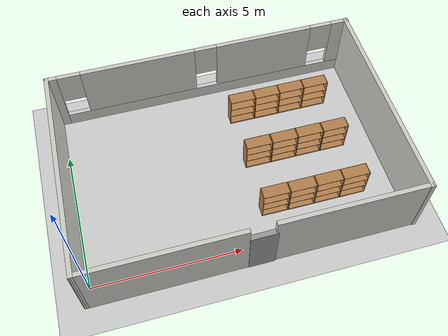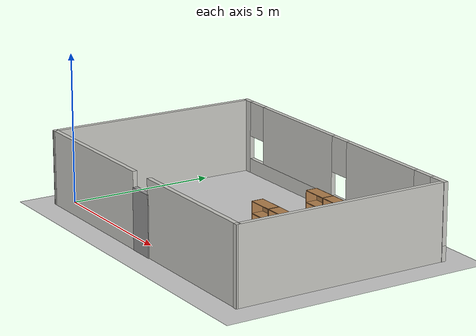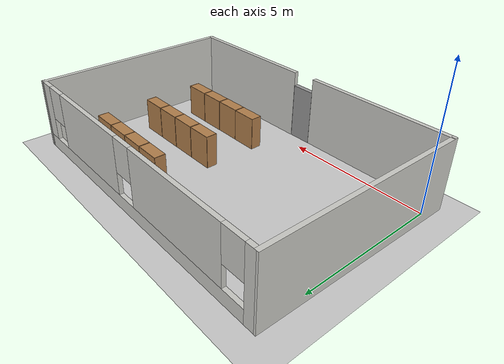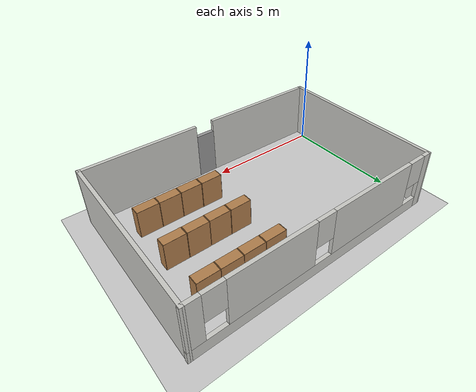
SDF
<sdf version="1.7">
 <world name="default">
  <model name="ground_plane">
   <static>1</static>
   <link name="link">
    <collision name="collision">
     <geometry><plane><normal>0 0 1</normal><size>100 100</size></plane></geometry>
     <surface>
      <contact><collide_bitmask>65535</collide_bitmask></contact>
      <friction><ode><mu>100</mu><mu2>50</mu2></ode></friction>
     </surface>
    </collision>
    <visual name="visual">
     <cast_shadows>0</cast_shadows>
     <geometry><plane><normal>0 0 1</normal><size>100 100</size></plane></geometry>
     <material>
      <script><uri>file://media/materials/scripts/gazebo.material</uri><name>Gazebo/Grey</name></script>
     </material>
    </visual>
   </link>
  </model>
  <model name="bookshelf_11">
   <static>1</static>
   <link name="link">
    <inertial><mass>1</mass></inertial>
    <collision name="back">
     <pose>0 0.005 0.6 0 -0 0</pose>
     <geometry><box><size>0.9 0.01 1.2</size></box></geometry>
    </collision>
    <visual name="visual1">
     <pose>0 0.005 0.6 0 -0 0</pose>
     <geometry><box><size>0.9 0.01 1.2</size></box></geometry>
     <material>
      <script><uri>file://media/materials/scripts/gazebo.material</uri><name>Gazebo/Wood</name></script>
     </material>
    </visual>
    <collision name="left_side">
     <pose>0.45 -0.195 0.6 0 -0 0</pose>
     <geometry><box><size>0.02 0.4 1.2</size></box></geometry>
    </collision>
    <visual name="visual2">
     <pose>0.45 -0.195 0.6 0 -0 0</pose>
     <geometry><box><size>0.02 0.4 1.2</size></box></geometry>
     <material>
      <script><uri>file://media/materials/scripts/gazebo.material</uri><name>Gazebo/Wood</name></script>
     </material>
    </visual>
    <collision name="right_side">
     <pose>-0.45 -0.195 0.6 0 -0 0</pose>
     <geometry><box><size>0.02 0.4 1.2</size></box></geometry>
    </collision>
    <visual name="visual3">
     <pose>-0.45 -0.195 0.6 0 -0 0</pose>
     <geometry><box><size>0.02 0.4 1.2</size></box></geometry>
     <material>
      <script><uri>file://media/materials/scripts/gazebo.material</uri><name>Gazebo/Wood</name></script>
     </material>
    </visual>
    <collision name="bottom">
     <pose>0 -0.195 0.03 0 -0 0</pose>
     <geometry><box><size>0.88 0.4 0.06</size></box></geometry>
    </collision>
    <visual name="visual4">
     <pose>0 -0.195 0.03 0 -0 0</pose>
     <geometry><box><size>0.88 0.4 0.06</size></box></geometry>
     <material>
      <script><uri>file://media/materials/scripts/gazebo.material</uri><name>Gazebo/Wood</name></script>
     </material>
    </visual>
    <collision name="top">
     <pose>0 -0.195 1.19 0 -0 0</pose>
     <geometry><box><size>0.88 0.4 0.02</size></box></geometry>
    </collision>
    <visual name="visual5">
     <pose>0 -0.195 1.19 0 -0 0</pose>
     <geometry><box><size>0.88 0.4 0.02</size></box></geometry>
     <material>
      <script><uri>file://media/materials/scripts/gazebo.material</uri><name>Gazebo/Wood</name></script>
     </material>
    </visual>
    <collision name="low_shelf">
     <pose>0 -0.195 0.43 0 -0 0</pose>
     <geometry><box><size>0.88 0.4 0.02</size></box></geometry>
    </collision>
    <visual name="visual6">
     <pose>0 -0.195 0.43 0 -0 0</pose>
     <geometry><box><size>0.88 0.4 0.02</size></box></geometry>
     <material>
      <script><uri>file://media/materials/scripts/gazebo.material</uri><name>Gazebo/Wood</name></script>
     </material>
    </visual>
    <collision name="high_shelf">
     <pose>0 -0.195 0.8 0 -0 0</pose>
     <geometry><box><size>0.88 0.4 0.02</size></box></geometry>
    </collision>
    <visual name="visual7">
     <pose>0 -0.195 0.8 0 -0 0</pose>
     <geometry><box><size>0.88 0.4 0.02</size></box></geometry>
     <material>
      <script><uri>file://media/materials/scripts/gazebo.material</uri><name>Gazebo/Wood</name></script>
     </material>
    </visual>
   </link>
   <pose>6.45841 5.41018 0 0 -0 0</pose>
  </model>
  <model name="bookshelf_12">
   <static>1</static>
   <link name="link">
    <inertial><mass>1</mass></inertial>
    <collision name="back">
     <pose>0 0.005 0.6 0 -0 0</pose>
     <geometry><box><size>0.9 0.01 1.2</size></box></geometry>
    </collision>
    <visual name="visual1">
     <pose>0 0.005 0.6 0 -0 0</pose>
     <geometry><box><size>0.9 0.01 1.2</size></box></geometry>
     <material>
      <script><uri>file://media/materials/scripts/gazebo.material</uri><name>Gazebo/Wood</name></script>
     </material>
    </visual>
    <collision name="left_side">
     <pose>0.45 -0.195 0.6 0 -0 0</pose>
     <geometry><box><size>0.02 0.4 1.2</size></box></geometry>
    </collision>
    <visual name="visual2">
     <pose>0.45 -0.195 0.6 0 -0 0</pose>
     <geometry><box><size>0.02 0.4 1.2</size></box></geometry>
     <material>
      <script><uri>file://media/materials/scripts/gazebo.material</uri><name>Gazebo/Wood</name></script>
     </material>
    </visual>
    <collision name="right_side">
     <pose>-0.45 -0.195 0.6 0 -0 0</pose>
     <geometry><box><size>0.02 0.4 1.2</size></box></geometry>
    </collision>
    <visual name="visual3">
     <pose>-0.45 -0.195 0.6 0 -0 0</pose>
     <geometry><box><size>0.02 0.4 1.2</size></box></geometry>
     <material>
      <script><uri>file://media/materials/scripts/gazebo.material</uri><name>Gazebo/Wood</name></script>
     </material>
    </visual>
    <collision name="bottom">
     <pose>0 -0.195 0.03 0 -0 0</pose>
     <geometry><box><size>0.88 0.4 0.06</size></box></geometry>
    </collision>
    <visual name="visual4">
     <pose>0 -0.195 0.03 0 -0 0</pose>
     <geometry><box><size>0.88 0.4 0.06</size></box></geometry>
     <material>
      <script><uri>file://media/materials/scripts/gazebo.material</uri><name>Gazebo/Wood</name></script>
     </material>
    </visual>
    <collision name="top">
     <pose>0 -0.195 1.19 0 -0 0</pose>
     <geometry><box><size>0.88 0.4 0.02</size></box></geometry>
    </collision>
    <visual name="visual5">
     <pose>0 -0.195 1.19 0 -0 0</pose>
     <geometry><box><size>0.88 0.4 0.02</size></box></geometry>
     <material>
      <script><uri>file://media/materials/scripts/gazebo.material</uri><name>Gazebo/Wood</name></script>
     </material>
    </visual>
    <collision name="low_shelf">
     <pose>0 -0.195 0.43 0 -0 0</pose>
     <geometry><box><size>0.88 0.4 0.02</size></box></geometry>
    </collision>
    <visual name="visual6">
     <pose>0 -0.195 0.43 0 -0 0</pose>
     <geometry><box><size>0.88 0.4 0.02</size></box></geometry>
     <material>
      <script><uri>file://media/materials/scripts/gazebo.material</uri><name>Gazebo/Wood</name></script>
     </material>
    </visual>
    <collision name="high_shelf">
     <pose>0 -0.195 0.8 0 -0 0</pose>
     <geometry><box><size>0.88 0.4 0.02</size></box></geometry>
    </collision>
    <visual name="visual7">
     <pose>0 -0.195 0.8 0 -0 0</pose>
     <geometry><box><size>0.88 0.4 0.02</size></box></geometry>
     <material>
      <script><uri>file://media/materials/scripts/gazebo.material</uri><name>Gazebo/Wood</name></script>
     </material>
    </visual>
   </link>
   <pose>6.46154 3.39615 0 0 -0 0</pose>
  </model>
  <model name="bookshelf_13">
   <static>1</static>
   <link name="link">
    <inertial><mass>1</mass></inertial>
    <collision name="back">
     <pose>0 0.005 0.6 0 -0 0</pose>
     <geometry><box><size>0.9 0.01 1.2</size></box></geometry>
    </collision>
    <visual name="visual1">
     <pose>0 0.005 0.6 0 -0 0</pose>
     <geometry><box><size>0.9 0.01 1.2</size></box></geometry>
     <material>
      <script><uri>file://media/materials/scripts/gazebo.material</uri><name>Gazebo/Wood</name></script>
     </material>
    </visual>
    <collision name="left_side">
     <pose>0.45 -0.195 0.6 0 -0 0</pose>
     <geometry><box><size>0.02 0.4 1.2</size></box></geometry>
    </collision>
    <visual name="visual2">
     <pose>0.45 -0.195 0.6 0 -0 0</pose>
     <geometry><box><size>0.02 0.4 1.2</size></box></geometry>
     <material>
      <script><uri>file://media/materials/scripts/gazebo.material</uri><name>Gazebo/Wood</name></script>
     </material>
    </visual>
    <collision name="right_side">
     <pose>-0.45 -0.195 0.6 0 -0 0</pose>
     <geometry><box><size>0.02 0.4 1.2</size></box></geometry>
    </collision>
    <visual name="visual3">
     <pose>-0.45 -0.195 0.6 0 -0 0</pose>
     <geometry><box><size>0.02 0.4 1.2</size></box></geometry>
     <material>
      <script><uri>file://media/materials/scripts/gazebo.material</uri><name>Gazebo/Wood</name></script>
     </material>
    </visual>
    <collision name="bottom">
     <pose>0 -0.195 0.03 0 -0 0</pose>
     <geometry><box><size>0.88 0.4 0.06</size></box></geometry>
    </collision>
    <visual name="visual4">
     <pose>0 -0.195 0.03 0 -0 0</pose>
     <geometry><box><size>0.88 0.4 0.06</size></box></geometry>
     <material>
      <script><uri>file://media/materials/scripts/gazebo.material</uri><name>Gazebo/Wood</name></script>
     </material>
    </visual>
    <collision name="top">
     <pose>0 -0.195 1.19 0 -0 0</pose>
     <geometry><box><size>0.88 0.4 0.02</size></box></geometry>
    </collision>
    <visual name="visual5">
     <pose>0 -0.195 1.19 0 -0 0</pose>
     <geometry><box><size>0.88 0.4 0.02</size></box></geometry>
     <material>
      <script><uri>file://media/materials/scripts/gazebo.material</uri><name>Gazebo/Wood</name></script>
     </material>
    </visual>
    <collision name="low_shelf">
     <pose>0 -0.195 0.43 0 -0 0</pose>
     <geometry><box><size>0.88 0.4 0.02</size></box></geometry>
    </collision>
    <visual name="visual6">
     <pose>0 -0.195 0.43 0 -0 0</pose>
     <geometry><box><size>0.88 0.4 0.02</size></box></geometry>
     <material>
      <script><uri>file://media/materials/scripts/gazebo.material</uri><name>Gazebo/Wood</name></script>
     </material>
    </visual>
    <collision name="high_shelf">
     <pose>0 -0.195 0.8 0 -0 0</pose>
     <geometry><box><size>0.88 0.4 0.02</size></box></geometry>
    </collision>
    <visual name="visual7">
     <pose>0 -0.195 0.8 0 -0 0</pose>
     <geometry><box><size>0.88 0.4 0.02</size></box></geometry>
     <material>
      <script><uri>file://media/materials/scripts/gazebo.material</uri><name>Gazebo/Wood</name></script>
     </material>
    </visual>
   </link>
   <pose>6.44421 1.41365 0 0 -0 0</pose>
  </model>
  <model name="bookshelf_14">
   <static>1</static>
   <link name="link">
    <inertial><mass>1</mass></inertial>
    <collision name="back">
     <pose>0 0.005 0.6 0 -0 0</pose>
     <geometry><box><size>0.9 0.01 1.2</size></box></geometry>
    </collision>
    <visual name="visual1">
     <pose>0 0.005 0.6 0 -0 0</pose>
     <geometry><box><size>0.9 0.01 1.2</size></box></geometry>
     <material>
      <script><uri>file://media/materials/scripts/gazebo.material</uri><name>Gazebo/Wood</name></script>
     </material>
    </visual>
    <collision name="left_side">
     <pose>0.45 -0.195 0.6 0 -0 0</pose>
     <geometry><box><size>0.02 0.4 1.2</size></box></geometry>
    </collision>
    <visual name="visual2">
     <pose>0.45 -0.195 0.6 0 -0 0</pose>
     <geometry><box><size>0.02 0.4 1.2</size></box></geometry>
     <material>
      <script><uri>file://media/materials/scripts/gazebo.material</uri><name>Gazebo/Wood</name></script>
     </material>
    </visual>
    <collision name="right_side">
     <pose>-0.45 -0.195 0.6 0 -0 0</pose>
     <geometry><box><size>0.02 0.4 1.2</size></box></geometry>
    </collision>
    <visual name="visual3">
     <pose>-0.45 -0.195 0.6 0 -0 0</pose>
     <geometry><box><size>0.02 0.4 1.2</size></box></geometry>
     <material>
      <script><uri>file://media/materials/scripts/gazebo.material</uri><name>Gazebo/Wood</name></script>
     </material>
    </visual>
    <collision name="bottom">
     <pose>0 -0.195 0.03 0 -0 0</pose>
     <geometry><box><size>0.88 0.4 0.06</size></box></geometry>
    </collision>
    <visual name="visual4">
     <pose>0 -0.195 0.03 0 -0 0</pose>
     <geometry><box><size>0.88 0.4 0.06</size></box></geometry>
     <material>
      <script><uri>file://media/materials/scripts/gazebo.material</uri><name>Gazebo/Wood</name></script>
     </material>
    </visual>
    <collision name="top">
     <pose>0 -0.195 1.19 0 -0 0</pose>
     <geometry><box><size>0.88 0.4 0.02</size></box></geometry>
    </collision>
    <visual name="visual5">
     <pose>0 -0.195 1.19 0 -0 0</pose>
     <geometry><box><size>0.88 0.4 0.02</size></box></geometry>
     <material>
      <script><uri>file://media/materials/scripts/gazebo.material</uri><name>Gazebo/Wood</name></script>
     </material>
    </visual>
    <collision name="low_shelf">
     <pose>0 -0.195 0.43 0 -0 0</pose>
     <geometry><box><size>0.88 0.4 0.02</size></box></geometry>
    </collision>
    <visual name="visual6">
     <pose>0 -0.195 0.43 0 -0 0</pose>
     <geometry><box><size>0.88 0.4 0.02</size></box></geometry>
     <material>
      <script><uri>file://media/materials/scripts/gazebo.material</uri><name>Gazebo/Wood</name></script>
     </material>
    </visual>
    <collision name="high_shelf">
     <pose>0 -0.195 0.8 0 -0 0</pose>
     <geometry><box><size>0.88 0.4 0.02</size></box></geometry>
    </collision>
    <visual name="visual7">
     <pose>0 -0.195 0.8 0 -0 0</pose>
     <geometry><box><size>0.88 0.4 0.02</size></box></geometry>
     <material>
      <script><uri>file://media/materials/scripts/gazebo.material</uri><name>Gazebo/Wood</name></script>
     </material>
    </visual>
   </link>
   <pose>7.38076 5.40908 0 0 -0 0</pose>
  </model>
  <model name="bookshelf_15">
   <static>1</static>
   <link name="link">
    <inertial><mass>1</mass></inertial>
    <collision name="back">
     <pose>0 0.005 0.6 0 -0 0</pose>
     <geometry><box><size>0.9 0.01 1.2</size></box></geometry>
    </collision>
    <visual name="visual1">
     <pose>0 0.005 0.6 0 -0 0</pose>
     <geometry><box><size>0.9 0.01 1.2</size></box></geometry>
     <material>
      <script><uri>file://media/materials/scripts/gazebo.material</uri><name>Gazebo/Wood</name></script>
     </material>
    </visual>
    <collision name="left_side">
     <pose>0.45 -0.195 0.6 0 -0 0</pose>
     <geometry><box><size>0.02 0.4 1.2</size></box></geometry>
    </collision>
    <visual name="visual2">
     <pose>0.45 -0.195 0.6 0 -0 0</pose>
     <geometry><box><size>0.02 0.4 1.2</size></box></geometry>
     <material>
      <script><uri>file://media/materials/scripts/gazebo.material</uri><name>Gazebo/Wood</name></script>
     </material>
    </visual>
    <collision name="right_side">
     <pose>-0.45 -0.195 0.6 0 -0 0</pose>
     <geometry><box><size>0.02 0.4 1.2</size></box></geometry>
    </collision>
    <visual name="visual3">
     <pose>-0.45 -0.195 0.6 0 -0 0</pose>
     <geometry><box><size>0.02 0.4 1.2</size></box></geometry>
     <material>
      <script><uri>file://media/materials/scripts/gazebo.material</uri><name>Gazebo/Wood</name></script>
     </material>
    </visual>
    <collision name="bottom">
     <pose>0 -0.195 0.03 0 -0 0</pose>
     <geometry><box><size>0.88 0.4 0.06</size></box></geometry>
    </collision>
    <visual name="visual4">
     <pose>0 -0.195 0.03 0 -0 0</pose>
     <geometry><box><size>0.88 0.4 0.06</size></box></geometry>
     <material>
      <script><uri>file://media/materials/scripts/gazebo.material</uri><name>Gazebo/Wood</name></script>
     </material>
    </visual>
    <collision name="top">
     <pose>0 -0.195 1.19 0 -0 0</pose>
     <geometry><box><size>0.88 0.4 0.02</size></box></geometry>
    </collision>
    <visual name="visual5">
     <pose>0 -0.195 1.19 0 -0 0</pose>
     <geometry><box><size>0.88 0.4 0.02</size></box></geometry>
     <material>
      <script><uri>file://media/materials/scripts/gazebo.material</uri><name>Gazebo/Wood</name></script>
     </material>
    </visual>
    <collision name="low_shelf">
     <pose>0 -0.195 0.43 0 -0 0</pose>
     <geometry><box><size>0.88 0.4 0.02</size></box></geometry>
    </collision>
    <visual name="visual6">
     <pose>0 -0.195 0.43 0 -0 0</pose>
     <geometry><box><size>0.88 0.4 0.02</size></box></geometry>
     <material>
      <script><uri>file://media/materials/scripts/gazebo.material</uri><name>Gazebo/Wood</name></script>
     </material>
    </visual>
    <collision name="high_shelf">
     <pose>0 -0.195 0.8 0 -0 0</pose>
     <geometry><box><size>0.88 0.4 0.02</size></box></geometry>
    </collision>
    <visual name="visual7">
     <pose>0 -0.195 0.8 0 -0 0</pose>
     <geometry><box><size>0.88 0.4 0.02</size></box></geometry>
     <material>
      <script><uri>file://media/materials/scripts/gazebo.material</uri><name>Gazebo/Wood</name></script>
     </material>
    </visual>
   </link>
   <pose>7.38849 3.39527 0 0 -0 0</pose>
  </model>
  <model name="bookshelf_16">
   <static>1</static>
   <link name="link">
    <inertial><mass>1</mass></inertial>
    <collision name="back">
     <pose>0 0.005 0.6 0 -0 0</pose>
     <geometry><box><size>0.9 0.01 1.2</size></box></geometry>
    </collision>
    <visual name="visual1">
     <pose>0 0.005 0.6 0 -0 0</pose>
     <geometry><box><size>0.9 0.01 1.2</size></box></geometry>
     <material>
      <script><uri>file://media/materials/scripts/gazebo.material</uri><name>Gazebo/Wood</name></script>
     </material>
    </visual>
    <collision name="left_side">
     <pose>0.45 -0.195 0.6 0 -0 0</pose>
     <geometry><box><size>0.02 0.4 1.2</size></box></geometry>
    </collision>
    <visual name="visual2">
     <pose>0.45 -0.195 0.6 0 -0 0</pose>
     <geometry><box><size>0.02 0.4 1.2</size></box></geometry>
     <material>
      <script><uri>file://media/materials/scripts/gazebo.material</uri><name>Gazebo/Wood</name></script>
     </material>
    </visual>
    <collision name="right_side">
     <pose>-0.45 -0.195 0.6 0 -0 0</pose>
     <geometry><box><size>0.02 0.4 1.2</size></box></geometry>
    </collision>
    <visual name="visual3">
     <pose>-0.45 -0.195 0.6 0 -0 0</pose>
     <geometry><box><size>0.02 0.4 1.2</size></box></geometry>
     <material>
      <script><uri>file://media/materials/scripts/gazebo.material</uri><name>Gazebo/Wood</name></script>
     </material>
    </visual>
    <collision name="bottom">
     <pose>0 -0.195 0.03 0 -0 0</pose>
     <geometry><box><size>0.88 0.4 0.06</size></box></geometry>
    </collision>
    <visual name="visual4">
     <pose>0 -0.195 0.03 0 -0 0</pose>
     <geometry><box><size>0.88 0.4 0.06</size></box></geometry>
     <material>
      <script><uri>file://media/materials/scripts/gazebo.material</uri><name>Gazebo/Wood</name></script>
     </material>
    </visual>
    <collision name="top">
     <pose>0 -0.195 1.19 0 -0 0</pose>
     <geometry><box><size>0.88 0.4 0.02</size></box></geometry>
    </collision>
    <visual name="visual5">
     <pose>0 -0.195 1.19 0 -0 0</pose>
     <geometry><box><size>0.88 0.4 0.02</size></box></geometry>
     <material>
      <script><uri>file://media/materials/scripts/gazebo.material</uri><name>Gazebo/Wood</name></script>
     </material>
    </visual>
    <collision name="low_shelf">
     <pose>0 -0.195 0.43 0 -0 0</pose>
     <geometry><box><size>0.88 0.4 0.02</size></box></geometry>
    </collision>
    <visual name="visual6">
     <pose>0 -0.195 0.43 0 -0 0</pose>
     <geometry><box><size>0.88 0.4 0.02</size></box></geometry>
     <material>
      <script><uri>file://media/materials/scripts/gazebo.material</uri><name>Gazebo/Wood</name></script>
     </material>
    </visual>
    <collision name="high_shelf">
     <pose>0 -0.195 0.8 0 -0 0</pose>
     <geometry><box><size>0.88 0.4 0.02</size></box></geometry>
    </collision>
    <visual name="visual7">
     <pose>0 -0.195 0.8 0 -0 0</pose>
     <geometry><box><size>0.88 0.4 0.02</size></box></geometry>
     <material>
      <script><uri>file://media/materials/scripts/gazebo.material</uri><name>Gazebo/Wood</name></script>
     </material>
    </visual>
   </link>
   <pose>7.36943 1.40695 0 0 -0 0</pose>
  </model>
  <model name="bookshelf_17">
   <static>1</static>
   <link name="link">
    <inertial><mass>1</mass></inertial>
    <collision name="back">
     <pose>0 0.005 0.6 0 -0 0</pose>
     <geometry><box><size>0.9 0.01 1.2</size></box></geometry>
    </collision>
    <visual name="visual1">
     <pose>0 0.005 0.6 0 -0 0</pose>
     <geometry><box><size>0.9 0.01 1.2</size></box></geometry>
     <material>
      <script><uri>file://media/materials/scripts/gazebo.material</uri><name>Gazebo/Wood</name></script>
     </material>
    </visual>
    <collision name="left_side">
     <pose>0.45 -0.195 0.6 0 -0 0</pose>
     <geometry><box><size>0.02 0.4 1.2</size></box></geometry>
    </collision>
    <visual name="visual2">
     <pose>0.45 -0.195 0.6 0 -0 0</pose>
     <geometry><box><size>0.02 0.4 1.2</size></box></geometry>
     <material>
      <script><uri>file://media/materials/scripts/gazebo.material</uri><name>Gazebo/Wood</name></script>
     </material>
    </visual>
    <collision name="right_side">
     <pose>-0.45 -0.195 0.6 0 -0 0</pose>
     <geometry><box><size>0.02 0.4 1.2</size></box></geometry>
    </collision>
    <visual name="visual3">
     <pose>-0.45 -0.195 0.6 0 -0 0</pose>
     <geometry><box><size>0.02 0.4 1.2</size></box></geometry>
     <material>
      <script><uri>file://media/materials/scripts/gazebo.material</uri><name>Gazebo/Wood</name></script>
     </material>
    </visual>
    <collision name="bottom">
     <pose>0 -0.195 0.03 0 -0 0</pose>
     <geometry><box><size>0.88 0.4 0.06</size></box></geometry>
    </collision>
    <visual name="visual4">
     <pose>0 -0.195 0.03 0 -0 0</pose>
     <geometry><box><size>0.88 0.4 0.06</size></box></geometry>
     <material>
      <script><uri>file://media/materials/scripts/gazebo.material</uri><name>Gazebo/Wood</name></script>
     </material>
    </visual>
    <collision name="top">
     <pose>0 -0.195 1.19 0 -0 0</pose>
     <geometry><box><size>0.88 0.4 0.02</size></box></geometry>
    </collision>
    <visual name="visual5">
     <pose>0 -0.195 1.19 0 -0 0</pose>
     <geometry><box><size>0.88 0.4 0.02</size></box></geometry>
     <material>
      <script><uri>file://media/materials/scripts/gazebo.material</uri><name>Gazebo/Wood</name></script>
     </material>
    </visual>
    <collision name="low_shelf">
     <pose>0 -0.195 0.43 0 -0 0</pose>
     <geometry><box><size>0.88 0.4 0.02</size></box></geometry>
    </collision>
    <visual name="visual6">
     <pose>0 -0.195 0.43 0 -0 0</pose>
     <geometry><box><size>0.88 0.4 0.02</size></box></geometry>
     <material>
      <script><uri>file://media/materials/scripts/gazebo.material</uri><name>Gazebo/Wood</name></script>
     </material>
    </visual>
    <collision name="high_shelf">
     <pose>0 -0.195 0.8 0 -0 0</pose>
     <geometry><box><size>0.88 0.4 0.02</size></box></geometry>
    </collision>
    <visual name="visual7">
     <pose>0 -0.195 0.8 0 -0 0</pose>
     <geometry><box><size>0.88 0.4 0.02</size></box></geometry>
     <material>
      <script><uri>file://media/materials/scripts/gazebo.material</uri><name>Gazebo/Wood</name></script>
     </material>
    </visual>
   </link>
   <pose>8.2985 5.41345 0 0 -0 0</pose>
  </model>
  <model name="bookshelf_18">
   <static>1</static>
   <link name="link">
    <inertial><mass>1</mass></inertial>
    <collision name="back">
     <pose>0 0.005 0.6 0 -0 0</pose>
     <geometry><box><size>0.9 0.01 1.2</size></box></geometry>
    </collision>
    <visual name="visual1">
     <pose>0 0.005 0.6 0 -0 0</pose>
     <geometry><box><size>0.9 0.01 1.2</size></box></geometry>
     <material>
      <script><uri>file://media/materials/scripts/gazebo.material</uri><name>Gazebo/Wood</name></script>
     </material>
    </visual>
    <collision name="left_side">
     <pose>0.45 -0.195 0.6 0 -0 0</pose>
     <geometry><box><size>0.02 0.4 1.2</size></box></geometry>
    </collision>
    <visual name="visual2">
     <pose>0.45 -0.195 0.6 0 -0 0</pose>
     <geometry><box><size>0.02 0.4 1.2</size></box></geometry>
     <material>
      <script><uri>file://media/materials/scripts/gazebo.material</uri><name>Gazebo/Wood</name></script>
     </material>
    </visual>
    <collision name="right_side">
     <pose>-0.45 -0.195 0.6 0 -0 0</pose>
     <geometry><box><size>0.02 0.4 1.2</size></box></geometry>
    </collision>
    <visual name="visual3">
     <pose>-0.45 -0.195 0.6 0 -0 0</pose>
     <geometry><box><size>0.02 0.4 1.2</size></box></geometry>
     <material>
      <script><uri>file://media/materials/scripts/gazebo.material</uri><name>Gazebo/Wood</name></script>
     </material>
    </visual>
    <collision name="bottom">
     <pose>0 -0.195 0.03 0 -0 0</pose>
     <geometry><box><size>0.88 0.4 0.06</size></box></geometry>
    </collision>
    <visual name="visual4">
     <pose>0 -0.195 0.03 0 -0 0</pose>
     <geometry><box><size>0.88 0.4 0.06</size></box></geometry>
     <material>
      <script><uri>file://media/materials/scripts/gazebo.material</uri><name>Gazebo/Wood</name></script>
     </material>
    </visual>
    <collision name="top">
     <pose>0 -0.195 1.19 0 -0 0</pose>
     <geometry><box><size>0.88 0.4 0.02</size></box></geometry>
    </collision>
    <visual name="visual5">
     <pose>0 -0.195 1.19 0 -0 0</pose>
     <geometry><box><size>0.88 0.4 0.02</size></box></geometry>
     <material>
      <script><uri>file://media/materials/scripts/gazebo.material</uri><name>Gazebo/Wood</name></script>
     </material>
    </visual>
    <collision name="low_shelf">
     <pose>0 -0.195 0.43 0 -0 0</pose>
     <geometry><box><size>0.88 0.4 0.02</size></box></geometry>
    </collision>
    <visual name="visual6">
     <pose>0 -0.195 0.43 0 -0 0</pose>
     <geometry><box><size>0.88 0.4 0.02</size></box></geometry>
     <material>
      <script><uri>file://media/materials/scripts/gazebo.material</uri><name>Gazebo/Wood</name></script>
     </material>
    </visual>
    <collision name="high_shelf">
     <pose>0 -0.195 0.8 0 -0 0</pose>
     <geometry><box><size>0.88 0.4 0.02</size></box></geometry>
    </collision>
    <visual name="visual7">
     <pose>0 -0.195 0.8 0 -0 0</pose>
     <geometry><box><size>0.88 0.4 0.02</size></box></geometry>
     <material>
      <script><uri>file://media/materials/scripts/gazebo.material</uri><name>Gazebo/Wood</name></script>
     </material>
    </visual>
   </link>
   <pose>8.30885 3.39913 0 0 -0 0</pose>
  </model>
  <model name="bookshelf_19">
   <static>1</static>
   <link name="link">
    <inertial><mass>1</mass></inertial>
    <collision name="back">
     <pose>0 0.005 0.6 0 -0 0</pose>
     <geometry><box><size>0.9 0.01 1.2</size></box></geometry>
    </collision>
    <visual name="visual1">
     <pose>0 0.005 0.6 0 -0 0</pose>
     <geometry><box><size>0.9 0.01 1.2</size></box></geometry>
     <material>
      <script><uri>file://media/materials/scripts/gazebo.material</uri><name>Gazebo/Wood</name></script>
     </material>
    </visual>
    <collision name="left_side">
     <pose>0.45 -0.195 0.6 0 -0 0</pose>
     <geometry><box><size>0.02 0.4 1.2</size></box></geometry>
    </collision>
    <visual name="visual2">
     <pose>0.45 -0.195 0.6 0 -0 0</pose>
     <geometry><box><size>0.02 0.4 1.2</size></box></geometry>
     <material>
      <script><uri>file://media/materials/scripts/gazebo.material</uri><name>Gazebo/Wood</name></script>
     </material>
    </visual>
    <collision name="right_side">
     <pose>-0.45 -0.195 0.6 0 -0 0</pose>
     <geometry><box><size>0.02 0.4 1.2</size></box></geometry>
    </collision>
    <visual name="visual3">
     <pose>-0.45 -0.195 0.6 0 -0 0</pose>
     <geometry><box><size>0.02 0.4 1.2</size></box></geometry>
     <material>
      <script><uri>file://media/materials/scripts/gazebo.material</uri><name>Gazebo/Wood</name></script>
     </material>
    </visual>
    <collision name="bottom">
     <pose>0 -0.195 0.03 0 -0 0</pose>
     <geometry><box><size>0.88 0.4 0.06</size></box></geometry>
    </collision>
    <visual name="visual4">
     <pose>0 -0.195 0.03 0 -0 0</pose>
     <geometry><box><size>0.88 0.4 0.06</size></box></geometry>
     <material>
      <script><uri>file://media/materials/scripts/gazebo.material</uri><name>Gazebo/Wood</name></script>
     </material>
    </visual>
    <collision name="top">
     <pose>0 -0.195 1.19 0 -0 0</pose>
     <geometry><box><size>0.88 0.4 0.02</size></box></geometry>
    </collision>
    <visual name="visual5">
     <pose>0 -0.195 1.19 0 -0 0</pose>
     <geometry><box><size>0.88 0.4 0.02</size></box></geometry>
     <material>
      <script><uri>file://media/materials/scripts/gazebo.material</uri><name>Gazebo/Wood</name></script>
     </material>
    </visual>
    <collision name="low_shelf">
     <pose>0 -0.195 0.43 0 -0 0</pose>
     <geometry><box><size>0.88 0.4 0.02</size></box></geometry>
    </collision>
    <visual name="visual6">
     <pose>0 -0.195 0.43 0 -0 0</pose>
     <geometry><box><size>0.88 0.4 0.02</size></box></geometry>
     <material>
      <script><uri>file://media/materials/scripts/gazebo.material</uri><name>Gazebo/Wood</name></script>
     </material>
    </visual>
    <collision name="high_shelf">
     <pose>0 -0.195 0.8 0 -0 0</pose>
     <geometry><box><size>0.88 0.4 0.02</size></box></geometry>
    </collision>
    <visual name="visual7">
     <pose>0 -0.195 0.8 0 -0 0</pose>
     <geometry><box><size>0.88 0.4 0.02</size></box></geometry>
     <material>
      <script><uri>file://media/materials/scripts/gazebo.material</uri><name>Gazebo/Wood</name></script>
     </material>
    </visual>
   </link>
   <pose>8.29376 1.40915 0 0 -0 0</pose>
  </model>
  <model name="bookshelf_20">
   <static>1</static>
   <link name="link">
    <inertial><mass>1</mass></inertial>
    <collision name="back">
     <pose>0 0.005 0.6 0 -0 0</pose>
     <geometry><box><size>0.9 0.01 1.2</size></box></geometry>
    </collision>
    <visual name="visual1">
     <pose>0 0.005 0.6 0 -0 0</pose>
     <geometry><box><size>0.9 0.01 1.2</size></box></geometry>
     <material>
      <script><uri>file://media/materials/scripts/gazebo.material</uri><name>Gazebo/Wood</name></script>
     </material>
    </visual>
    <collision name="left_side">
     <pose>0.45 -0.195 0.6 0 -0 0</pose>
     <geometry><box><size>0.02 0.4 1.2</size></box></geometry>
    </collision>
    <visual name="visual2">
     <pose>0.45 -0.195 0.6 0 -0 0</pose>
     <geometry><box><size>0.02 0.4 1.2</size></box></geometry>
     <material>
      <script><uri>file://media/materials/scripts/gazebo.material</uri><name>Gazebo/Wood</name></script>
     </material>
    </visual>
    <collision name="right_side">
     <pose>-0.45 -0.195 0.6 0 -0 0</pose>
     <geometry><box><size>0.02 0.4 1.2</size></box></geometry>
    </collision>
    <visual name="visual3">
     <pose>-0.45 -0.195 0.6 0 -0 0</pose>
     <geometry><box><size>0.02 0.4 1.2</size></box></geometry>
     <material>
      <script><uri>file://media/materials/scripts/gazebo.material</uri><name>Gazebo/Wood</name></script>
     </material>
    </visual>
    <collision name="bottom">
     <pose>0 -0.195 0.03 0 -0 0</pose>
     <geometry><box><size>0.88 0.4 0.06</size></box></geometry>
    </collision>
    <visual name="visual4">
     <pose>0 -0.195 0.03 0 -0 0</pose>
     <geometry><box><size>0.88 0.4 0.06</size></box></geometry>
     <material>
      <script><uri>file://media/materials/scripts/gazebo.material</uri><name>Gazebo/Wood</name></script>
     </material>
    </visual>
    <collision name="top">
     <pose>0 -0.195 1.19 0 -0 0</pose>
     <geometry><box><size>0.88 0.4 0.02</size></box></geometry>
    </collision>
    <visual name="visual5">
     <pose>0 -0.195 1.19 0 -0 0</pose>
     <geometry><box><size>0.88 0.4 0.02</size></box></geometry>
     <material>
      <script><uri>file://media/materials/scripts/gazebo.material</uri><name>Gazebo/Wood</name></script>
     </material>
    </visual>
    <collision name="low_shelf">
     <pose>0 -0.195 0.43 0 -0 0</pose>
     <geometry><box><size>0.88 0.4 0.02</size></box></geometry>
    </collision>
    <visual name="visual6">
     <pose>0 -0.195 0.43 0 -0 0</pose>
     <geometry><box><size>0.88 0.4 0.02</size></box></geometry>
     <material>
      <script><uri>file://media/materials/scripts/gazebo.material</uri><name>Gazebo/Wood</name></script>
     </material>
    </visual>
    <collision name="high_shelf">
     <pose>0 -0.195 0.8 0 -0 0</pose>
     <geometry><box><size>0.88 0.4 0.02</size></box></geometry>
    </collision>
    <visual name="visual7">
     <pose>0 -0.195 0.8 0 -0 0</pose>
     <geometry><box><size>0.88 0.4 0.02</size></box></geometry>
     <material>
      <script><uri>file://media/materials/scripts/gazebo.material</uri><name>Gazebo/Wood</name></script>
     </material>
    </visual>
   </link>
   <pose>9.21663 5.41432 0 0 -0 0</pose>
  </model>
  <model name="bookshelf_21">
   <static>1</static>
   <link name="link">
    <inertial><mass>1</mass></inertial>
    <collision name="back">
     <pose>0 0.005 0.6 0 -0 0</pose>
     <geometry><box><size>0.9 0.01 1.2</size></box></geometry>
    </collision>
    <visual name="visual1">
     <pose>0 0.005 0.6 0 -0 0</pose>
     <geometry><box><size>0.9 0.01 1.2</size></box></geometry>
     <material>
      <script><uri>file://media/materials/scripts/gazebo.material</uri><name>Gazebo/Wood</name></script>
     </material>
    </visual>
    <collision name="left_side">
     <pose>0.45 -0.195 0.6 0 -0 0</pose>
     <geometry><box><size>0.02 0.4 1.2</size></box></geometry>
    </collision>
    <visual name="visual2">
     <pose>0.45 -0.195 0.6 0 -0 0</pose>
     <geometry><box><size>0.02 0.4 1.2</size></box></geometry>
     <material>
      <script><uri>file://media/materials/scripts/gazebo.material</uri><name>Gazebo/Wood</name></script>
     </material>
    </visual>
    <collision name="right_side">
     <pose>-0.45 -0.195 0.6 0 -0 0</pose>
     <geometry><box><size>0.02 0.4 1.2</size></box></geometry>
    </collision>
    <visual name="visual3">
     <pose>-0.45 -0.195 0.6 0 -0 0</pose>
     <geometry><box><size>0.02 0.4 1.2</size></box></geometry>
     <material>
      <script><uri>file://media/materials/scripts/gazebo.material</uri><name>Gazebo/Wood</name></script>
     </material>
    </visual>
    <collision name="bottom">
     <pose>0 -0.195 0.03 0 -0 0</pose>
     <geometry><box><size>0.88 0.4 0.06</size></box></geometry>
    </collision>
    <visual name="visual4">
     <pose>0 -0.195 0.03 0 -0 0</pose>
     <geometry><box><size>0.88 0.4 0.06</size></box></geometry>
     <material>
      <script><uri>file://media/materials/scripts/gazebo.material</uri><name>Gazebo/Wood</name></script>
     </material>
    </visual>
    <collision name="top">
     <pose>0 -0.195 1.19 0 -0 0</pose>
     <geometry><box><size>0.88 0.4 0.02</size></box></geometry>
    </collision>
    <visual name="visual5">
     <pose>0 -0.195 1.19 0 -0 0</pose>
     <geometry><box><size>0.88 0.4 0.02</size></box></geometry>
     <material>
      <script><uri>file://media/materials/scripts/gazebo.material</uri><name>Gazebo/Wood</name></script>
     </material>
    </visual>
    <collision name="low_shelf">
     <pose>0 -0.195 0.43 0 -0 0</pose>
     <geometry><box><size>0.88 0.4 0.02</size></box></geometry>
    </collision>
    <visual name="visual6">
     <pose>0 -0.195 0.43 0 -0 0</pose>
     <geometry><box><size>0.88 0.4 0.02</size></box></geometry>
     <material>
      <script><uri>file://media/materials/scripts/gazebo.material</uri><name>Gazebo/Wood</name></script>
     </material>
    </visual>
    <collision name="high_shelf">
     <pose>0 -0.195 0.8 0 -0 0</pose>
     <geometry><box><size>0.88 0.4 0.02</size></box></geometry>
    </collision>
    <visual name="visual7">
     <pose>0 -0.195 0.8 0 -0 0</pose>
     <geometry><box><size>0.88 0.4 0.02</size></box></geometry>
     <material>
      <script><uri>file://media/materials/scripts/gazebo.material</uri><name>Gazebo/Wood</name></script>
     </material>
    </visual>
   </link>
   <pose>9.23404 3.39597 0 0 -0 0</pose>
  </model>
  <model name="bookshelf_22">
   <static>1</static>
   <link name="link">
    <inertial><mass>1</mass></inertial>
    <collision name="back">
     <pose>0 0.005 0.6 0 -0 0</pose>
     <geometry><box><size>0.9 0.01 1.2</size></box></geometry>
    </collision>
    <visual name="visual1">
     <pose>0 0.005 0.6 0 -0 0</pose>
     <geometry><box><size>0.9 0.01 1.2</size></box></geometry>
     <material>
      <script><uri>file://media/materials/scripts/gazebo.material</uri><name>Gazebo/Wood</name></script>
     </material>
    </visual>
    <collision name="left_side">
     <pose>0.45 -0.195 0.6 0 -0 0</pose>
     <geometry><box><size>0.02 0.4 1.2</size></box></geometry>
    </collision>
    <visual name="visual2">
     <pose>0.45 -0.195 0.6 0 -0 0</pose>
     <geometry><box><size>0.02 0.4 1.2</size></box></geometry>
     <material>
      <script><uri>file://media/materials/scripts/gazebo.material</uri><name>Gazebo/Wood</name></script>
     </material>
    </visual>
    <collision name="right_side">
     <pose>-0.45 -0.195 0.6 0 -0 0</pose>
     <geometry><box><size>0.02 0.4 1.2</size></box></geometry>
    </collision>
    <visual name="visual3">
     <pose>-0.45 -0.195 0.6 0 -0 0</pose>
     <geometry><box><size>0.02 0.4 1.2</size></box></geometry>
     <material>
      <script><uri>file://media/materials/scripts/gazebo.material</uri><name>Gazebo/Wood</name></script>
     </material>
    </visual>
    <collision name="bottom">
     <pose>0 -0.195 0.03 0 -0 0</pose>
     <geometry><box><size>0.88 0.4 0.06</size></box></geometry>
    </collision>
    <visual name="visual4">
     <pose>0 -0.195 0.03 0 -0 0</pose>
     <geometry><box><size>0.88 0.4 0.06</size></box></geometry>
     <material>
      <script><uri>file://media/materials/scripts/gazebo.material</uri><name>Gazebo/Wood</name></script>
     </material>
    </visual>
    <collision name="top">
     <pose>0 -0.195 1.19 0 -0 0</pose>
     <geometry><box><size>0.88 0.4 0.02</size></box></geometry>
    </collision>
    <visual name="visual5">
     <pose>0 -0.195 1.19 0 -0 0</pose>
     <geometry><box><size>0.88 0.4 0.02</size></box></geometry>
     <material>
      <script><uri>file://media/materials/scripts/gazebo.material</uri><name>Gazebo/Wood</name></script>
     </material>
    </visual>
    <collision name="low_shelf">
     <pose>0 -0.195 0.43 0 -0 0</pose>
     <geometry><box><size>0.88 0.4 0.02</size></box></geometry>
    </collision>
    <visual name="visual6">
     <pose>0 -0.195 0.43 0 -0 0</pose>
     <geometry><box><size>0.88 0.4 0.02</size></box></geometry>
     <material>
      <script><uri>file://media/materials/scripts/gazebo.material</uri><name>Gazebo/Wood</name></script>
     </material>
    </visual>
    <collision name="high_shelf">
     <pose>0 -0.195 0.8 0 -0 0</pose>
     <geometry><box><size>0.88 0.4 0.02</size></box></geometry>
    </collision>
    <visual name="visual7">
     <pose>0 -0.195 0.8 0 -0 0</pose>
     <geometry><box><size>0.88 0.4 0.02</size></box></geometry>
     <material>
      <script><uri>file://media/materials/scripts/gazebo.material</uri><name>Gazebo/Wood</name></script>
     </material>
    </visual>
   </link>
   <pose>9.2149 1.40687 0 0 -0 0</pose>
  </model>
  <model name="Actual_super_market">
   <pose>5.32194 3.06888 0 0 -0 0</pose>
   <link name="Door_1">
    <collision name="Door_1_Collision">
     <geometry><box><size>0.9 0.17 2</size></box></geometry>
     <pose>0 0 1 0 -0 0</pose>
    </collision>
    <visual name="Door_1_Visual">
     <pose>0 0 1 0 -0 0</pose>
     <geometry><box><size>0.9 0.17 2</size></box></geometry>
     <material>
      <script><uri>file://media/materials/scripts/gazebo.material</uri><name>Gazebo/Grey</name></script>
     </material>
    </visual>
    <pose>0.148403 -3.61522 0 0 -0 0</pose>
   </link>
   <link name="Wall_1">
    <collision name="Wall_1_Collision">
     <geometry><box><size>5.25 0.15 2.5</size></box></geometry>
     <pose>0 0 1.25 0 -0 0</pose>
    </collision>
    <visual name="Wall_1_Visual">
     <pose>0 0 1.25 0 -0 0</pose>
     <geometry><box><size>5.25 0.15 2.5</size></box></geometry>
     <material>
      <script><uri>file://media/materials/scripts/gazebo.material</uri><name>Gazebo/CeilingTiled</name></script>
      <ambient>1 1 1 1</ambient>
     </material>
     <meta><layer>0</layer></meta>
    </visual>
    <pose>-2.91794 -3.61196 0 0 -0 3.14159</pose>
   </link>
   <link name="Wall_3">
    <collision name="Wall_3_Collision">
     <geometry><box><size>7.37467 0.15 2.5</size></box></geometry>
     <pose>0 0 1.25 0 -0 0</pose>
    </collision>
    <visual name="Wall_3_Visual">
     <pose>0 0 1.25 0 -0 0</pose>
     <geometry><box><size>7.37467 0.15 2.5</size></box></geometry>
     <material>
      <script><uri>file://media/materials/scripts/gazebo.material</uri><name>Gazebo/CeilingTiled</name></script>
      <ambient>1 1 1 1</ambient>
     </material>
     <meta><layer>0</layer></meta>
    </visual>
    <pose>-5.43316 -0 0 0 -0 1.55635</pose>
   </link>
   <link name="Wall_5">
    <pose>0.061407 3.61196 0 0 -0 0</pose>
    <visual name="Wall_5_Visual_0">
     <pose>-5.29818 0 1.25 0 -0 0</pose>
     <geometry><box><size>0.403646 0.15 2.5</size></box></geometry>
     <material>
      <script><uri>file://media/materials/scripts/gazebo.material</uri><name>Gazebo/CeilingTiled</name></script>
      <ambient>1 1 1 1</ambient>
     </material>
     <meta><layer>0</layer></meta>
    </visual>
    <collision name="Wall_5_Collision_0">
     <geometry><box><size>0.403646 0.15 2.5</size></box></geometry>
     <pose>-5.29818 0 1.25 0 -0 0</pose>
    </collision>
    <visual name="Wall_5_Visual_1">
     <pose>0.201823 0 0.25 0 -0 0</pose>
     <geometry><box><size>10.5964 0.15 0.5</size></box></geometry>
     <material>
      <script><uri>file://media/materials/scripts/gazebo.material</uri><name>Gazebo/CeilingTiled</name></script>
      <ambient>1 1 1 1</ambient>
     </material>
     <meta><layer>0</layer></meta>
    </visual>
    <collision name="Wall_5_Collision_1">
     <geometry><box><size>10.5964 0.15 0.5</size></box></geometry>
     <pose>0.201823 0 0.25 0 -0 0</pose>
    </collision>
    <visual name="Wall_5_Visual_2">
     <pose>-2.28426 0 1.5 0 -0 0</pose>
     <geometry><box><size>4.0242 0.15 2</size></box></geometry>
     <material>
      <script><uri>file://media/materials/scripts/gazebo.material</uri><name>Gazebo/CeilingTiled</name></script>
      <ambient>1 1 1 1</ambient>
     </material>
     <meta><layer>0</layer></meta>
    </visual>
    <collision name="Wall_5_Collision_2">
     <geometry><box><size>4.0242 0.15 2</size></box></geometry>
     <pose>-2.28426 0 1.5 0 -0 0</pose>
    </collision>
    <visual name="Wall_5_Visual_3">
     <pose>2.28285 0 1.5 0 -0 0</pose>
     <geometry><box><size>3.51002 0.15 2</size></box></geometry>
     <material>
      <script><uri>file://media/materials/scripts/gazebo.material</uri><name>Gazebo/CeilingTiled</name></script>
      <ambient>1 1 1 1</ambient>
     </material>
     <meta><layer>0</layer></meta>
    </visual>
    <collision name="Wall_5_Collision_3">
     <geometry><box><size>3.51002 0.15 2</size></box></geometry>
     <pose>2.28285 0 1.5 0 -0 0</pose>
    </collision>
    <visual name="Wall_5_Visual_4">
     <pose>5.16893 0 1.5 0 -0 0</pose>
     <geometry><box><size>0.662139 0.15 2</size></box></geometry>
     <material>
      <script><uri>file://media/materials/scripts/gazebo.material</uri><name>Gazebo/CeilingTiled</name></script>
      <ambient>1 1 1 1</ambient>
     </material>
     <meta><layer>0</layer></meta>
    </visual>
    <collision name="Wall_5_Collision_4">
     <geometry><box><size>0.662139 0.15 2</size></box></geometry>
     <pose>5.16893 0 1.5 0 -0 0</pose>
    </collision>
    <visual name="Wall_5_Visual_5">
     <pose>-4.69635 0 1.9 0 -0 0</pose>
     <geometry><box><size>0.8 0.15 1.2</size></box></geometry>
     <material>
      <script><uri>file://media/materials/scripts/gazebo.material</uri><name>Gazebo/CeilingTiled</name></script>
      <ambient>1 1 1 1</ambient>
     </material>
     <meta><layer>0</layer></meta>
    </visual>
    <collision name="Wall_5_Collision_5">
     <geometry><box><size>0.8 0.15 1.2</size></box></geometry>
     <pose>-4.69635 0 1.9 0 -0 0</pose>
    </collision>
    <visual name="Wall_5_Visual_6">
     <pose>0.127842 0 1.9 0 -0 0</pose>
     <geometry><box><size>0.8 0.15 1.2</size></box></geometry>
     <material>
      <script><uri>file://media/materials/scripts/gazebo.material</uri><name>Gazebo/CeilingTiled</name></script>
      <ambient>1 1 1 1</ambient>
     </material>
     <meta><layer>0</layer></meta>
    </visual>
    <collision name="Wall_5_Collision_6">
     <geometry><box><size>0.8 0.15 1.2</size></box></geometry>
     <pose>0.127842 0 1.9 0 -0 0</pose>
    </collision>
    <visual name="Wall_5_Visual_7">
     <pose>4.43786 0 1.9 0 -0 0</pose>
     <geometry><box><size>0.8 0.15 1.2</size></box></geometry>
     <material>
      <script><uri>file://media/materials/scripts/gazebo.material</uri><name>Gazebo/CeilingTiled</name></script>
      <ambient>1 1 1 1</ambient>
     </material>
     <meta><layer>0</layer></meta>
    </visual>
    <collision name="Wall_5_Collision_7">
     <geometry><box><size>0.8 0.15 1.2</size></box></geometry>
     <pose>4.43786 0 1.9 0 -0 0</pose>
    </collision>
   </link>
   <link name="Wall_6">
    <collision name="Wall_6_Collision">
     <geometry><box><size>7.37393 0.15 2.5</size></box></geometry>
     <pose>0 0 1.25 0 -0 0</pose>
    </collision>
    <visual name="Wall_6_Visual">
     <pose>0 0 1.25 0 -0 0</pose>
     <geometry><box><size>7.37393 0.15 2.5</size></box></geometry>
     <material>
      <script><uri>file://media/materials/scripts/gazebo.material</uri><name>Gazebo/CeilingTiled</name></script>
      <ambient>1 1 1 1</ambient>
     </material>
     <meta><layer>0</layer></meta>
    </visual>
    <pose>5.46032 -0 0 0 -0 -1.5732</pose>
   </link>
   <link name="Wall_7">
    <collision name="Wall_7_Collision">
     <geometry><box><size>5 0.15 2.5</size></box></geometry>
     <pose>0 0 1.25 0 -0 0</pose>
    </collision>
    <visual name="Wall_7_Visual">
     <pose>0 0 1.25 0 -0 0</pose>
     <geometry><box><size>5 0.15 2.5</size></box></geometry>
     <material>
      <script><uri>file://media/materials/scripts/gazebo.material</uri><name>Gazebo/CeilingTiled</name></script>
      <ambient>1 1 1 1</ambient>
     </material>
     <meta><layer>0</layer></meta>
    </visual>
    <pose>3.02663 -3.59456 0 0 -0 3.14159</pose>
   </link>
   <static>1</static>
  </model>
 </world>
</sdf>
